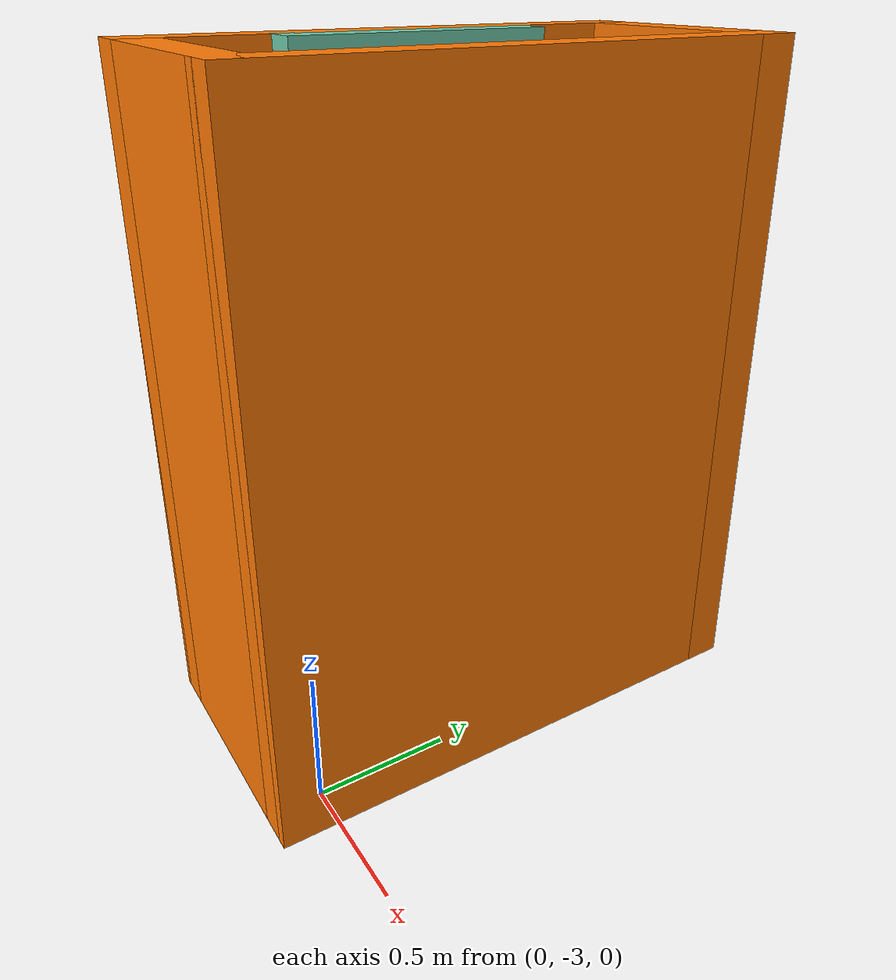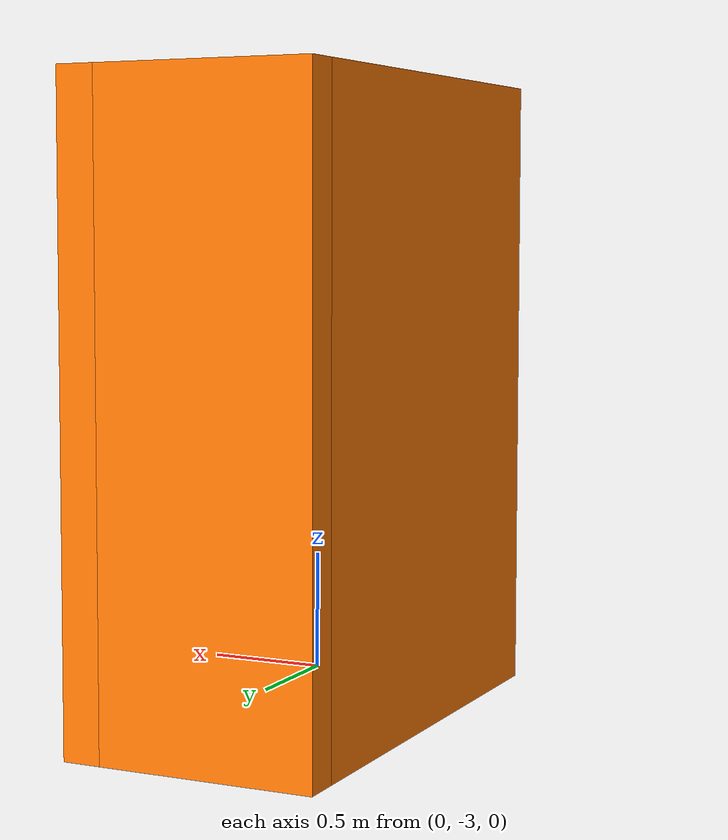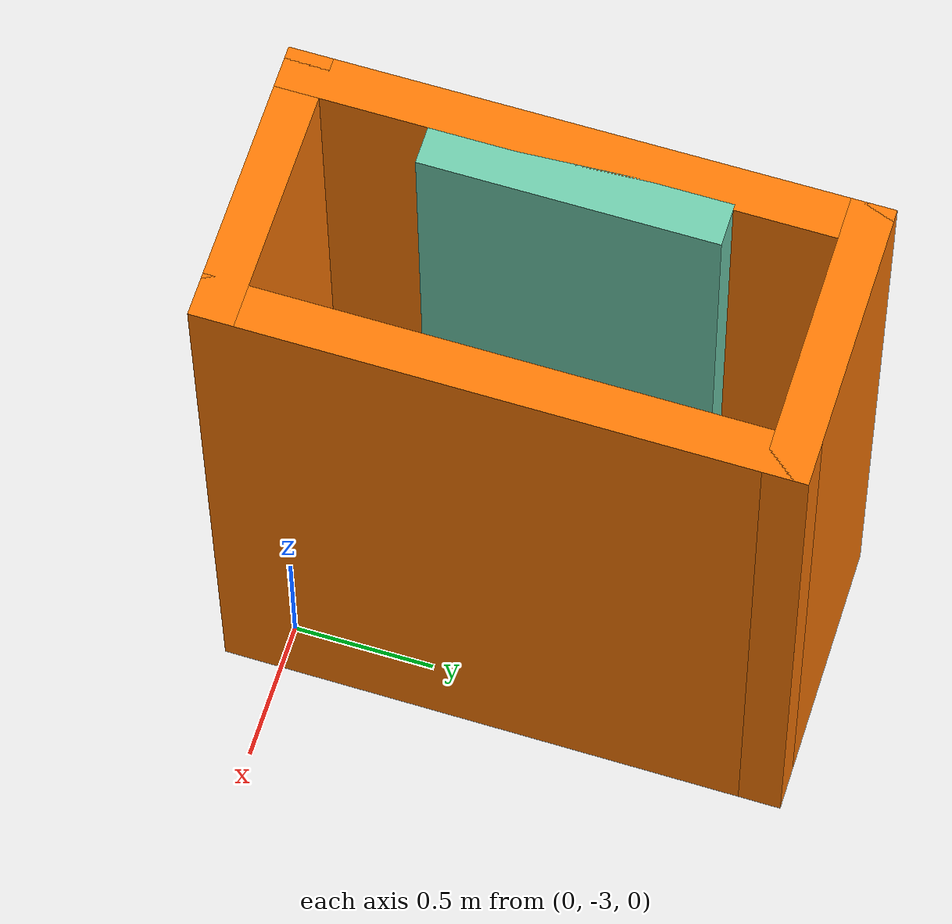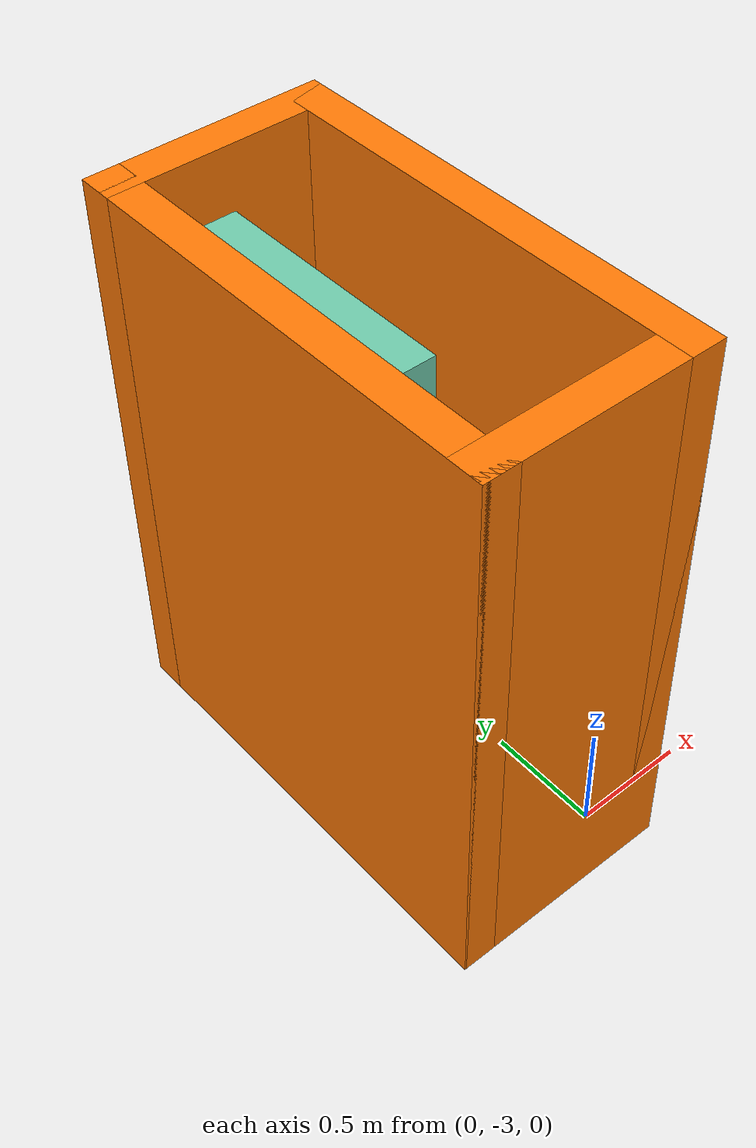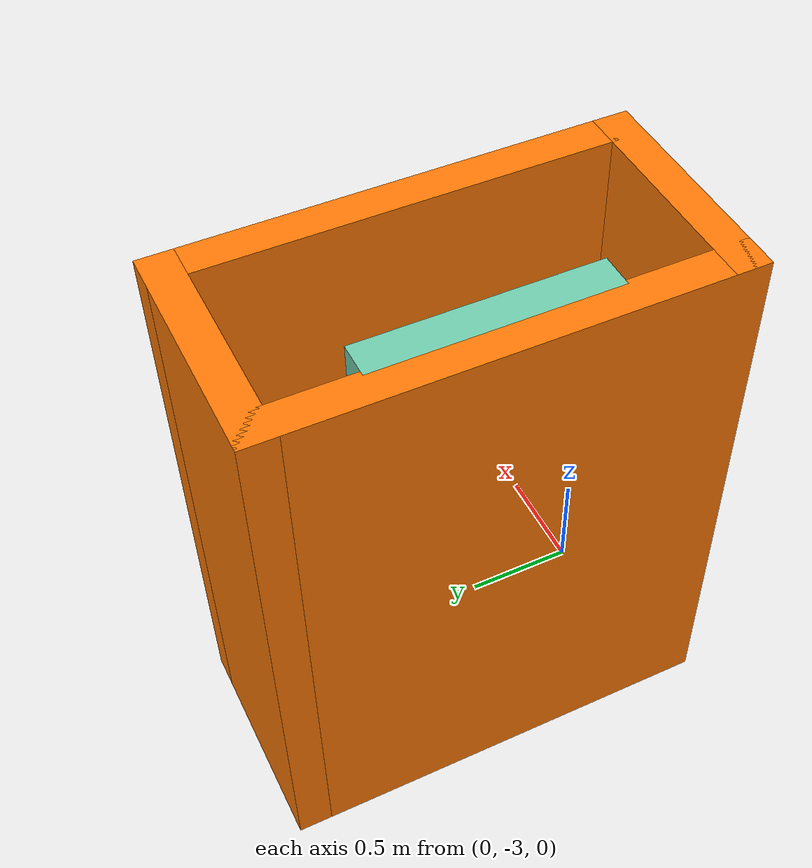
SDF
<?xml version='1.0'?>
<sdf version='1.7'>
  <model name='tek'>
    <pose>-0.345 -1.6025 0 0 -0 0</pose>
    <link name='Wall_0'>
      <collision name='Wall_0_Collision'>
        <geometry>
          <box>
            <size>2 0.15 2.5</size>
          </box>
        </geometry>
        <pose>0 0 1.25 0 -0 0</pose>
      </collision>
      <visual name='Wall_0_Visual'>
        <pose>0 0 1.25 0 -0 0</pose>
        <geometry>
          <box>
            <size>2 0.15 2.5</size>
          </box>
        </geometry>
        <material>
          <script>
            <uri>file://media/materials/scripts/gazebo.material</uri>
            <name>Gazebo/Grey</name>
          </script>
          <ambient>0.996078 0.47451 0.0196078 1</ambient>
        </material>
        <meta>
          <layer>0</layer>
        </meta>
      </visual>
      <pose>-0.425 -0.6025 0 0 -0 -1.5708</pose>
    </link>
    <link name='Wall_1'>
      <collision name='Wall_1_Collision'>
        <geometry>
          <box>
            <size>1 0.15 2.5</size>
          </box>
        </geometry>
        <pose>0 0 1.25 0 -0 0</pose>
      </collision>
      <visual name='Wall_1_Visual'>
        <pose>0 0 1.25 0 -0 0</pose>
        <geometry>
          <box>
            <size>1 0.15 2.5</size>
          </box>
        </geometry>
        <material>
          <script>
            <uri>file://media/materials/scripts/gazebo.material</uri>
            <name>Gazebo/Grey</name>
          </script>
          <ambient>0.996078 0.47451 0.0196078 1</ambient>
        </material>
        <meta>
          <layer>0</layer>
        </meta>
      </visual>
      <pose>-0 -1.5275 0 0 -0 0</pose>
    </link>
    <link name='Wall_2'>
      <collision name='Wall_2_Collision'>
        <geometry>
          <box>
            <size>2 0.15 2.5</size>
          </box>
        </geometry>
        <pose>0 0 1.25 0 -0 0</pose>
      </collision>
      <visual name='Wall_2_Visual'>
        <pose>0 0 1.25 0 -0 0</pose>
        <geometry>
          <box>
            <size>2 0.15 2.5</size>
          </box>
        </geometry>
        <material>
          <script>
            <uri>file://media/materials/scripts/gazebo.material</uri>
            <name>Gazebo/Grey</name>
          </script>
          <ambient>0.996078 0.47451 0.0196078 1</ambient>
        </material>
        <meta>
          <layer>0</layer>
        </meta>
      </visual>
      <pose>0.425 -0.6025 0 0 -0 1.5708</pose>
    </link>
    <link name='Wall_3'>
      <collision name='Wall_3_Collision'>
        <geometry>
          <box>
            <size>1 0.15 2.5</size>
          </box>
        </geometry>
        <pose>0 0 1.25 0 -0 0</pose>
      </collision>
      <visual name='Wall_3_Visual'>
        <pose>0 0 1.25 0 -0 0</pose>
        <geometry>
          <box>
            <size>1 0.15 2.5</size>
          </box>
        </geometry>
        <material>
          <script>
            <uri>file://media/materials/scripts/gazebo.material</uri>
            <name>Gazebo/Grey</name>
          </script>
          <ambient>0.996078 0.47451 0.0196078 1</ambient>
        </material>
        <meta>
          <layer>0</layer>
        </meta>
      </visual>
      <pose>-0 0.3225 0 0 -0 3.14159</pose>
    </link>
    <link name='Wall_6'>
      <collision name='Wall_6_Collision'>
        <geometry>
          <box>
            <size>1 0.15 2.5</size>
          </box>
        </geometry>
        <pose>0 0 1.25 0 -0 0</pose>
      </collision>
      <visual name='Wall_6_Visual'>
        <pose>0 0 1.25 0 -0 0</pose>
        <geometry>
          <box>
            <size>1 0.15 2.5</size>
          </box>
        </geometry>
        <material>
          <script>
            <uri>file://media/materials/scripts/gazebo.material</uri>
            <name>Gazebo/Grey</name>
          </script>
          <ambient>0.435294 0.796078 0.67451 1</ambient>
        </material>
        <meta>
          <layer>0</layer>
        </meta>
      </visual>
      <pose>-0.295 -0.5925 0 0 -0 -1.5708</pose>
    </link>
    <static>1</static>
  </model>
</sdf>
